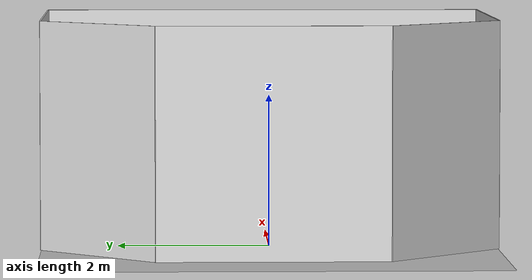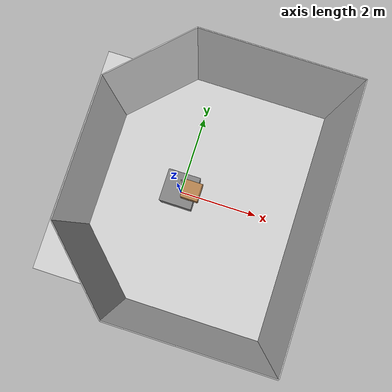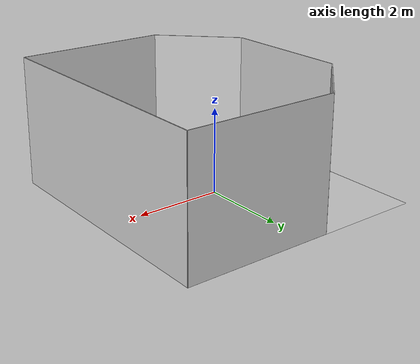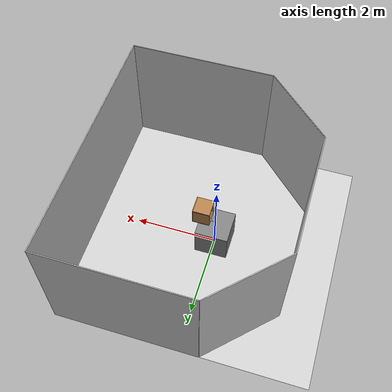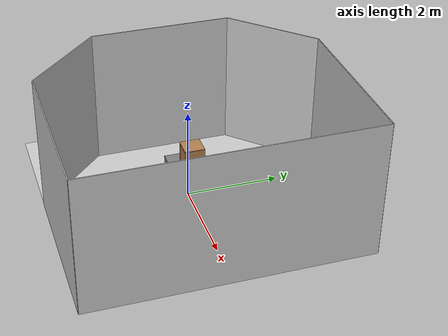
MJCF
<!-- modification of https://github.com/vikashplus/mj_envs/tree/master/mj_envs/hand_manipulation_suite/assets -->
<!-- Information about door can be found in this paper: https://arxiv.org/pdf/1709.10087.pdf -->

<mujoco model="cabinet_arena">
    <asset>
        <!-- Room and table textures -->
        <texture builtin="gradient" height="256" rgb1=".9 .9 1." rgb2=".2 .3 .4" type="skybox" width="256"/>
        <texture file="../models/assets/textures/light-gray-floor-tile.png" type="2d" name="texplane"/>
        <material name="floorplane" reflectance="0.01" shininess="0.0" specular="0.0" texrepeat="2 2" texture="texplane" texuniform="true"/>
        <!-- ceramic table texture and material-->
        <texture file="../models/assets/textures/ceramic.png" type="cube" name="tex-ceramic"/>
        <material name="table_ceramic" reflectance="0.0" shininess="0.0" specular="0.2" texrepeat="1 1" texture="tex-ceramic" />
        <!-- steel legs -->
        <texture file="../models/assets/textures/steel-brushed.png" type="cube" name="tex-steel-brushed"/>
        <material name="table_legs_metal" reflectance="0.8" shininess="0.8" texrepeat="1 1" texture="tex-steel-brushed" />
        <!-- plaster walls -->
        <texture file="../models/assets/textures/light-gray-plaster.png" type="2d" name="tex-light-gray-plaster"/>
        <material name="walls_mat" reflectance="0.0" shininess="0.1" specular="0.1" texrepeat="3 3" texture="tex-light-gray-plaster" texuniform="true" />
        <!-- added table texture and material for domain randomization -->
        <texture  name="textable" builtin="flat" height="512" width="512" rgb1="0.5 0.5 0.5" rgb2="0.5 0.5 0.5"/>
        <material name="table_mat" texture="textable" />
        <!-- Door textures -->
        <texture file="../models/assets/textures/light-wood.png" type="cube" name="light-wood" />
        <texture file="../models/assets/textures/dark-wood.png" type="cube" name="dark-wood" />
        <texture file="../models/assets/textures/brass-ambra.png" type="cube" name="brass" />
        <texture file="../models/assets/textures/metal.png" type="cube" name="metal" />
        <material name="MatMetal" texture="brass" specular="1" shininess="0.3" rgba="0.9 0.9 0.9 1" />
        <material name="MatClearMetal" texture="metal" specular="0.4" shininess="0.1" rgba="0.8 0.8 0.8 0.5"/>
        <material name="MatLightWood" texture="light-wood" texrepeat="3 3" specular="0.4" shininess="0.1" />
    </asset>
    <worldbody>
         <!-- Floor -->
        <geom condim="3" group="1" material="floorplane" name="floor" pos="0 0 0" size="3 3 .125" type="plane"/>
        <!-- Walls (visual only) -->
        <geom pos="-1.25 2.25 1.5" quat="0.6532815 0.6532815 0.2705981 0.2705981" size="1.06 1.5 0.01" type="box" conaffinity="0" contype="0" group="1" name="wall_leftcorner_visual" material="walls_mat"/>
        <geom pos="-1.25 -2.25 1.5" quat="0.6532815 0.6532815 -0.2705981 -0.2705981" size="1.06 1.5 0.01" type="box" conaffinity="0" contype="0" group="1" name="wall_rightcorner_visual" material="walls_mat"/>
        <geom pos="1.25 3 1.5" quat="0.7071 0.7071 0 0" size="1.75 1.5 0.01" type="box" conaffinity="0" contype="0" group="1" name="wall_left_visual" material="walls_mat"/>
        <geom pos="1.25 -3 1.5" quat="0.7071 -0.7071 0 0" size="1.75 1.5 0.01" type="box" conaffinity="0" contype="0" group="1" name="wall_right_visual" material="walls_mat"/>
        <geom pos="-2 0 1.5" quat="0.5 0.5 0.5 0.5" size="1.5 1.5 0.01" type="box" conaffinity="0" contype="0" group="1" name="wall_rear_visual" material="walls_mat"/>
        <geom pos="3 0 1.5" quat="0.5 0.5 -0.5 -0.5" size="3 1.5 0.01" type="box" conaffinity="0" contype="0" group="1" name="wall_front_visual" material="walls_mat"/>
        <!-- Table body -->
        <body name="table" pos="0 0 0.4">
            <geom pos="0 0 0" size="0.4 0.4 0.4" type="box" group="0" name="table_collision" friction="1 0.005 0.0001"/>
            <geom pos="0 0 0" size="0.4 0.4 0.4" type="box" conaffinity="0" contype="0" group="1" name="table_visual" material="table_ceramic"/>
            <site pos="0 0 0.4" name="table_top" size="0.001 0.001 0.001" rgba="0 0 0 0"/>
            <!-- Legs (visual only) -->
            <geom pos="0 0 0" size="0.05 0.1" type="cylinder" conaffinity="0" contype="0" group="1" name="table_leg1_visual" material="table_legs_metal"/>
            <geom pos="0 0 0" size="0.05 0.1" type="cylinder" conaffinity="0" contype="0" group="1" name="table_leg2_visual" material="table_legs_metal"/>
            <geom pos="0 0 0" size="0.05 0.1" type="cylinder" conaffinity="0" contype="0" group="1" name="table_leg3_visual" material="table_legs_metal"/>
            <geom pos="0 0 0" size="0.05 0.1" type="cylinder" conaffinity="0" contype="0" group="1" name="table_leg4_visual" material="table_legs_metal"/>
        </body>
        <!-- Cabinet - depth (x), width (y), height (z) -->
        <body name="cabinet" pos="0.3 0 1.2">
            <!-- Door Frame -->
            <body name="cabinet_frame" pos="0 0 0">
                <!-- Left frame -->
                <geom name="l_frame" type="box" size="0.2 0.01 0.2" pos="0 0.2 0" material="MatLightWood" group="1"/>
                <!-- Right frame -->
                <geom name="r_frame" type="box" size="0.185 0.01 0.2" pos="0.015 -0.2 0" material="MatLightWood" group="1"/>
                <!-- Top frame -->
                <geom name="top_frame" type="box" size="0.20 0.21 0.01" pos="0 0 0.21" material="MatLightWood" group="1"/>
                <!-- Bottom frame -->
                <geom name="bot_frame" type="box" size="0.20 0.21 0.01" pos="0 0 -0.21" material="MatLightWood" group="1"/>
                <!-- back frame -->
                <geom name="back_frame" type="box" size="0.01 0.21 0.22" pos="0.21 0 0" material="MatLightWood" group="1"/>
                <!-- Door Panel -->
            </body>

            <!-- Reference sites -->
            <site name="cabinet_center" pos="0 0 0" size="0.005" rgba="0 1 0 0.5"/>
            <site name="cabinet_bottom" pos="0 0 -0.2" rgba="0 0 0 0" size="0.005"/>
            <site name="cabinet_top" pos="0 0 0.2" rgba="0 0 0 0" size="0.005"/>
        </body>

        <!-- Cabinet Door -->
        <body>
            <body name="object">
                <body name="dframe" pos="0.11 -0.011 1.2" quat="0.707388 0 0 -0.706825">
                    <inertial pos="0 0 0" quat="0.5 0.5 0.5 0.5" mass="7.85398" diaginertia="0.923301 0.764585 0.168533" />
                    <body name="door" pos="0 0 0">
                        <inertial pos="0.0296816 -0.00152345 0" quat="0.701072 0 0 0.713091" mass="2.43455" diaginertia="0.0913751 0.0521615 0.043714" />
                        <joint name="hinge" pos="0.2 0 0" axis="0 0 1" range="0.0 3.14" damping="1" frictionloss="1" limited="true"/>
                        <geom size="0.199 0.01 0.199" type="box" friction="1 1 1" group="1" name="panel" material="MatClearMetal"/>
                        <body name="latch" pos="-0.175 0 -0.025">
                            <inertial pos="-0.017762 0.0138544 0" quat="0.365653 0.605347 -0.36522 0.605365" mass="0.1" diaginertia="0.0483771 0.0410001 0.0111013" />
                            <geom fromto="0 0 0 0 -0.125 0" size="0.02" type="cylinder" group="1" name="handle_base" material="MatMetal"/>
                            <geom size="0.075 0.015 0.02" pos="0.075 -0.10 0" type="box" group="1" name="handle" material="MatMetal"/>
                            <!-- Don't render the door handle site by default -->
                            <site name="handle" pos="0.125 -0.10 0" size="0.02" rgba="0 0 1 0" />
                        </body>
                    </body>
                </body>
            </body>
            <site name="bottom_site" pos="0 0 -0.22" rgba="0 0 0 0" size="0.005"/>
            <site name="top_site" pos="0 0 0.22" rgba="0 0 0 0" size="0.005"/>
            <site name="horizontal_radius_site" pos="0 0 0" rgba="0 0 0 0" size="0.1"/>
        </body>

        <!-- Lighting and Cameras -->
        <light pos="1.0 1.0 1.5" dir="-0.2 -0.2 -1" specular="0.3 0.3 0.3" directional="true" castshadow="true"/>
        <!-- front view -->
        <camera mode="fixed" name="frontview" pos="1.6 0 1.45" quat="0.56 0.43 0.43 0.56"/>
        <!-- bird view -->
        <camera mode="fixed" name="birdview" pos="-0.2 0 3.0" quat="0.7071 0 0 0.7071"/>
        <!-- agent view -->
        <camera mode="fixed" name="agentview" pos="1.0 0 1.75" quat="0.653 0.271 0.271 0.653"/>
    </worldbody>
</mujoco>
